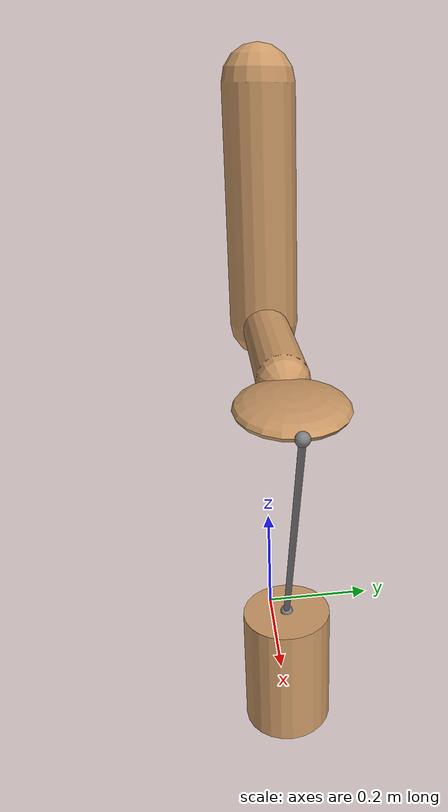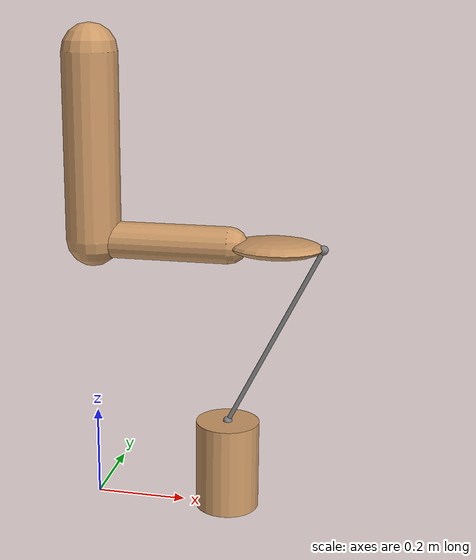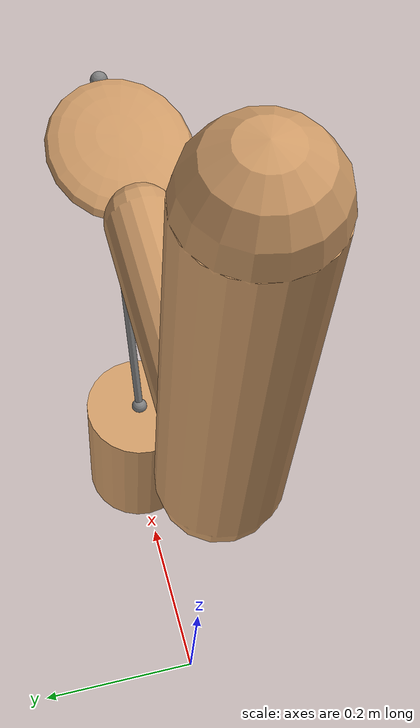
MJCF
<mujoco model="example_with_actuators">
  <default>
    <geom rgba=".8 .6 .4 1"/>
  </default>

  <asset>
    <texture type="skybox" builtin="gradient" rgb1="1 1 1" rgb2=".6 .8 .1" width="256" height="256"/>
  </asset>

  <worldbody>
    <light pos="0 1 1" dir="0 -1 -1" diffuse="1 1 1"/>
    <body pos="0 0 1">
      <joint name="root_ball" type="ball"/>
      <geom type="capsule" size="0.06" fromto="0 0 0  0 0 -.4"/>
      <body pos="0 0 -0.4">
        <joint name="hinge_y1" axis="0 1 0"/>
        <joint name="hinge_x1" axis="1 0 0"/>
        <geom type="capsule" size="0.04" fromto="0 0 0  .3 0 0"/>
        <body pos=".3 0 0">
          <joint name="hinge_y2" axis="0 1 0"/>
          <joint name="hinge_z2" axis="0 0 1"/>
          <geom pos=".1 0 0" size="0.1 0.08 0.02" type="ellipsoid"/>
          <site name="end1" pos="0.2 0 0" size="0.01"/>
        </body>
      </body>
    </body>

    <body pos="0.3 0 0.1">
      <joint name="free_root" type="free"/>
      <geom size="0.07 0.1" type="cylinder"/>
      <site name="end2" pos="0 0 0.1" size="0.01"/>
    </body>
  </worldbody>

  <tendon>
    <spatial limited="true" range="0 0.6" width="0.005">
      <site site="end1"/>
      <site site="end2"/>
    </spatial>
  </tendon>

  <actuator>
    <motor name="motor_root_ball_x" joint="root_ball" gear="1 0 0 0 0 0"/>
    <motor name="motor_root_ball_y" joint="root_ball" gear="0 1 0 0 0 0"/>
    <motor name="motor_root_ball_z" joint="root_ball" gear="0 0 1 0 0 0"/>
    <motor name="motor_hinge_y1" joint="hinge_y1" gear="50"/>
    <motor name="motor_hinge_x1" joint="hinge_x1" gear="50"/>
    <motor name="motor_hinge_y2" joint="hinge_y2" gear="50"/>
    <motor name="motor_hinge_z2" joint="hinge_z2" gear="50"/>
    <motor name="motor_free_root_x" joint="free_root" gear="1 0 0 0 0 0"/>
    <motor name="motor_free_root_y" joint="free_root" gear="0 1 0 0 0 0"/>
    <motor name="motor_free_root_z" joint="free_root" gear="0 0 1 0 0 0"/>
    <motor name="motor_free_root_rx" joint="free_root" gear="0 0 0 1 0 0"/>
    <motor name="motor_free_root_ry" joint="free_root" gear="0 0 0 0 1 0"/>
    <motor name="motor_free_root_rz" joint="free_root" gear="0 0 0 0 0 1"/>
  </actuator>
</mujoco>
